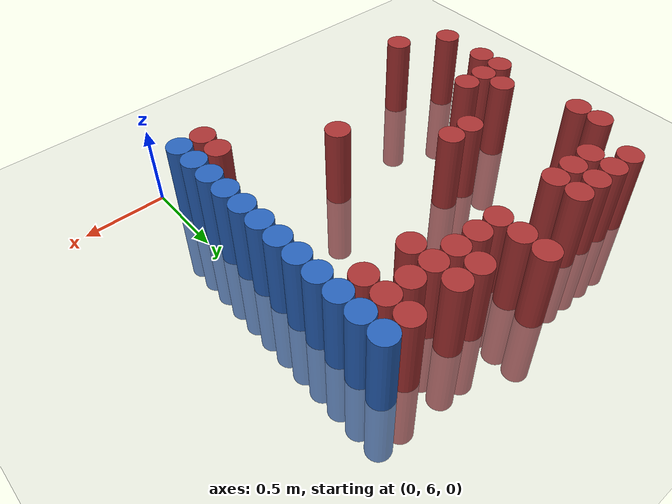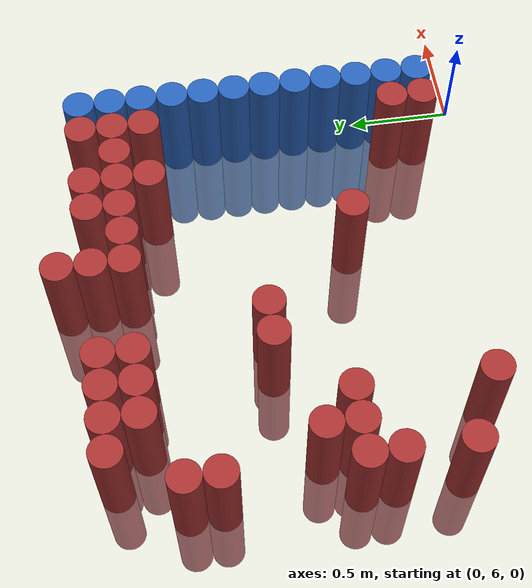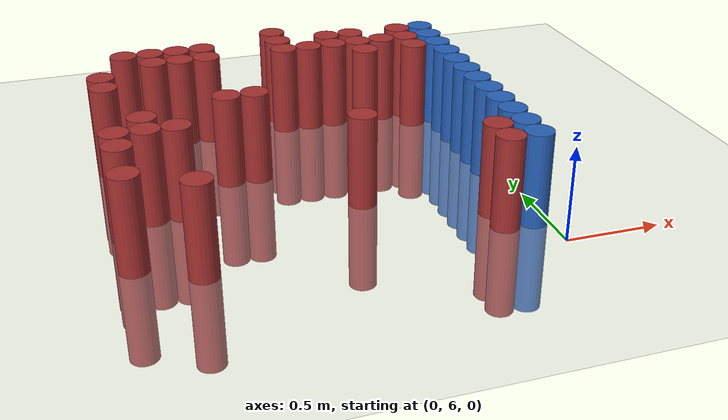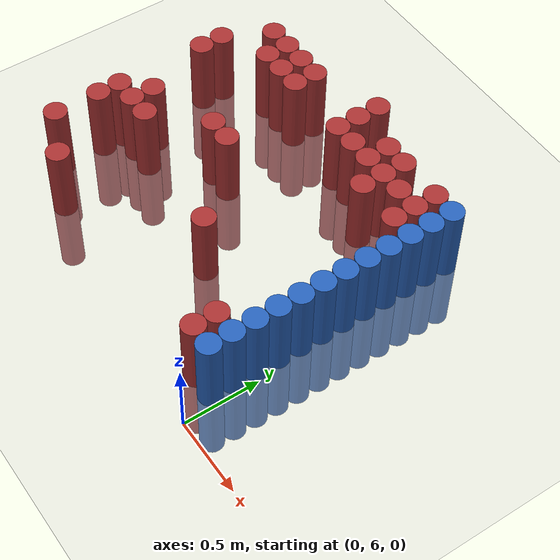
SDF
<sdf version="1.6">
 <world name="world_216">
  <model name="ground_plane">
   <static>1</static>
   <link name="link">
    <collision name="collision">
     <geometry><plane><normal>0 0 1</normal><size>100 100</size></plane></geometry>
     <surface><friction><ode><mu>100</mu><mu2>50</mu2></ode></friction></surface>
    </collision>
    <visual name="visual">
     <cast_shadows>0</cast_shadows>
     <geometry><plane><normal>0 0 1</normal><size>100 100</size></plane></geometry>
     <material>
      <script><uri>file://media/materials/scripts/gazebo.material</uri><name>Gazebo/Grey</name></script>
     </material>
    </visual>
   </link>
  </model>
  <model name="unit_cylinder_163">
   <static>1</static>
   <pose>-2.025000 6.375000 0.000000 0.000000 0.000000 0.000000</pose>
   <link name="link">
    <inertial>
     <mass>1</mass>
     <inertia><ixx>0.145833</ixx><ixy>0</ixy><ixz>0</ixz><iyy>0.145833</iyy><iyz>0</iyz><izz>0.125</izz></inertia>
    </inertial>
    <collision name="collision">
     <geometry><cylinder><radius>0.075000</radius><length>1</length></cylinder></geometry>
    </collision>
    <visual name="visual">
     <geometry><cylinder><radius>0.075000</radius><length>1</length></cylinder></geometry>
     <material>
      <ambient>0.648000 0.192000 0.192000 1</ambient>
      <diffuse>0.648000 0.192000 0.192000 1</diffuse>
     </material>
     <material>
      <script><name>Gazebo/Grey</name><uri>file://media/materials/scripts/gazebo.material</uri></script>
     </material>
    </visual>
   </link>
  </model>
  <model name="unit_cylinder_164">
   <static>1</static>
   <pose>-2.025000 6.675000 0.000000 0.000000 0.000000 0.000000</pose>
   <link name="link">
    <inertial>
     <mass>1</mass>
     <inertia><ixx>0.145833</ixx><ixy>0</ixy><ixz>0</ixz><iyy>0.145833</iyy><iyz>0</iyz><izz>0.125</izz></inertia>
    </inertial>
    <collision name="collision">
     <geometry><cylinder><radius>0.075000</radius><length>1</length></cylinder></geometry>
    </collision>
    <visual name="visual">
     <geometry><cylinder><radius>0.075000</radius><length>1</length></cylinder></geometry>
     <material>
      <ambient>0.648000 0.192000 0.192000 1</ambient>
      <diffuse>0.648000 0.192000 0.192000 1</diffuse>
     </material>
     <material>
      <script><name>Gazebo/Grey</name><uri>file://media/materials/scripts/gazebo.material</uri></script>
     </material>
    </visual>
   </link>
  </model>
  <model name="unit_cylinder_165">
   <static>1</static>
   <pose>-2.025000 6.825000 0.000000 0.000000 0.000000 0.000000</pose>
   <link name="link">
    <inertial>
     <mass>1</mass>
     <inertia><ixx>0.145833</ixx><ixy>0</ixy><ixz>0</ixz><iyy>0.145833</iyy><iyz>0</iyz><izz>0.125</izz></inertia>
    </inertial>
    <collision name="collision">
     <geometry><cylinder><radius>0.075000</radius><length>1</length></cylinder></geometry>
    </collision>
    <visual name="visual">
     <geometry><cylinder><radius>0.075000</radius><length>1</length></cylinder></geometry>
     <material>
      <ambient>0.648000 0.192000 0.192000 1</ambient>
      <diffuse>0.648000 0.192000 0.192000 1</diffuse>
     </material>
     <material>
      <script><name>Gazebo/Grey</name><uri>file://media/materials/scripts/gazebo.material</uri></script>
     </material>
    </visual>
   </link>
  </model>
  <model name="unit_cylinder_166">
   <static>1</static>
   <pose>-2.025000 7.425000 0.000000 0.000000 0.000000 0.000000</pose>
   <link name="link">
    <inertial>
     <mass>1</mass>
     <inertia><ixx>0.145833</ixx><ixy>0</ixy><ixz>0</ixz><iyy>0.145833</iyy><iyz>0</iyz><izz>0.125</izz></inertia>
    </inertial>
    <collision name="collision">
     <geometry><cylinder><radius>0.075000</radius><length>1</length></cylinder></geometry>
    </collision>
    <visual name="visual">
     <geometry><cylinder><radius>0.075000</radius><length>1</length></cylinder></geometry>
     <material>
      <ambient>0.648000 0.192000 0.192000 1</ambient>
      <diffuse>0.648000 0.192000 0.192000 1</diffuse>
     </material>
     <material>
      <script><name>Gazebo/Grey</name><uri>file://media/materials/scripts/gazebo.material</uri></script>
     </material>
    </visual>
   </link>
  </model>
  <model name="unit_cylinder_167">
   <static>1</static>
   <pose>-2.025000 7.575000 0.000000 0.000000 0.000000 0.000000</pose>
   <link name="link">
    <inertial>
     <mass>1</mass>
     <inertia><ixx>0.145833</ixx><ixy>0</ixy><ixz>0</ixz><iyy>0.145833</iyy><iyz>0</iyz><izz>0.125</izz></inertia>
    </inertial>
    <collision name="collision">
     <geometry><cylinder><radius>0.075000</radius><length>1</length></cylinder></geometry>
    </collision>
    <visual name="visual">
     <geometry><cylinder><radius>0.075000</radius><length>1</length></cylinder></geometry>
     <material>
      <ambient>0.648000 0.192000 0.192000 1</ambient>
      <diffuse>0.648000 0.192000 0.192000 1</diffuse>
     </material>
     <material>
      <script><name>Gazebo/Grey</name><uri>file://media/materials/scripts/gazebo.material</uri></script>
     </material>
    </visual>
   </link>
  </model>
  <model name="unit_cylinder_174">
   <static>1</static>
   <pose>-1.875000 6.825000 0.000000 0.000000 0.000000 0.000000</pose>
   <link name="link">
    <inertial>
     <mass>1</mass>
     <inertia><ixx>0.145833</ixx><ixy>0</ixy><ixz>0</ixz><iyy>0.145833</iyy><iyz>0</iyz><izz>0.125</izz></inertia>
    </inertial>
    <collision name="collision">
     <geometry><cylinder><radius>0.075000</radius><length>1</length></cylinder></geometry>
    </collision>
    <visual name="visual">
     <geometry><cylinder><radius>0.075000</radius><length>1</length></cylinder></geometry>
     <material>
      <ambient>0.648000 0.192000 0.192000 1</ambient>
      <diffuse>0.648000 0.192000 0.192000 1</diffuse>
     </material>
     <material>
      <script><name>Gazebo/Grey</name><uri>file://media/materials/scripts/gazebo.material</uri></script>
     </material>
    </visual>
   </link>
  </model>
  <model name="unit_cylinder_175">
   <static>1</static>
   <pose>-1.875000 6.975000 0.000000 0.000000 0.000000 0.000000</pose>
   <link name="link">
    <inertial>
     <mass>1</mass>
     <inertia><ixx>0.145833</ixx><ixy>0</ixy><ixz>0</ixz><iyy>0.145833</iyy><iyz>0</iyz><izz>0.125</izz></inertia>
    </inertial>
    <collision name="collision">
     <geometry><cylinder><radius>0.075000</radius><length>1</length></cylinder></geometry>
    </collision>
    <visual name="visual">
     <geometry><cylinder><radius>0.075000</radius><length>1</length></cylinder></geometry>
     <material>
      <ambient>0.648000 0.192000 0.192000 1</ambient>
      <diffuse>0.648000 0.192000 0.192000 1</diffuse>
     </material>
     <material>
      <script><name>Gazebo/Grey</name><uri>file://media/materials/scripts/gazebo.material</uri></script>
     </material>
    </visual>
   </link>
  </model>
  <model name="unit_cylinder_176">
   <static>1</static>
   <pose>-1.875000 7.875000 0.000000 0.000000 0.000000 0.000000</pose>
   <link name="link">
    <inertial>
     <mass>1</mass>
     <inertia><ixx>0.145833</ixx><ixy>0</ixy><ixz>0</ixz><iyy>0.145833</iyy><iyz>0</iyz><izz>0.125</izz></inertia>
    </inertial>
    <collision name="collision">
     <geometry><cylinder><radius>0.075000</radius><length>1</length></cylinder></geometry>
    </collision>
    <visual name="visual">
     <geometry><cylinder><radius>0.075000</radius><length>1</length></cylinder></geometry>
     <material>
      <ambient>0.648000 0.192000 0.192000 1</ambient>
      <diffuse>0.648000 0.192000 0.192000 1</diffuse>
     </material>
     <material>
      <script><name>Gazebo/Grey</name><uri>file://media/materials/scripts/gazebo.material</uri></script>
     </material>
    </visual>
   </link>
  </model>
  <model name="unit_cylinder_183">
   <static>1</static>
   <pose>-1.725000 6.225000 0.000000 0.000000 0.000000 0.000000</pose>
   <link name="link">
    <inertial>
     <mass>1</mass>
     <inertia><ixx>0.145833</ixx><ixy>0</ixy><ixz>0</ixz><iyy>0.145833</iyy><iyz>0</iyz><izz>0.125</izz></inertia>
    </inertial>
    <collision name="collision">
     <geometry><cylinder><radius>0.075000</radius><length>1</length></cylinder></geometry>
    </collision>
    <visual name="visual">
     <geometry><cylinder><radius>0.075000</radius><length>1</length></cylinder></geometry>
     <material>
      <ambient>0.648000 0.192000 0.192000 1</ambient>
      <diffuse>0.648000 0.192000 0.192000 1</diffuse>
     </material>
     <material>
      <script><name>Gazebo/Grey</name><uri>file://media/materials/scripts/gazebo.material</uri></script>
     </material>
    </visual>
   </link>
  </model>
  <model name="unit_cylinder_184">
   <static>1</static>
   <pose>-1.725000 6.825000 0.000000 0.000000 0.000000 0.000000</pose>
   <link name="link">
    <inertial>
     <mass>1</mass>
     <inertia><ixx>0.145833</ixx><ixy>0</ixy><ixz>0</ixz><iyy>0.145833</iyy><iyz>0</iyz><izz>0.125</izz></inertia>
    </inertial>
    <collision name="collision">
     <geometry><cylinder><radius>0.075000</radius><length>1</length></cylinder></geometry>
    </collision>
    <visual name="visual">
     <geometry><cylinder><radius>0.075000</radius><length>1</length></cylinder></geometry>
     <material>
      <ambient>0.648000 0.192000 0.192000 1</ambient>
      <diffuse>0.648000 0.192000 0.192000 1</diffuse>
     </material>
     <material>
      <script><name>Gazebo/Grey</name><uri>file://media/materials/scripts/gazebo.material</uri></script>
     </material>
    </visual>
   </link>
  </model>
  <model name="unit_cylinder_185">
   <static>1</static>
   <pose>-1.725000 7.725000 0.000000 0.000000 0.000000 0.000000</pose>
   <link name="link">
    <inertial>
     <mass>1</mass>
     <inertia><ixx>0.145833</ixx><ixy>0</ixy><ixz>0</ixz><iyy>0.145833</iyy><iyz>0</iyz><izz>0.125</izz></inertia>
    </inertial>
    <collision name="collision">
     <geometry><cylinder><radius>0.075000</radius><length>1</length></cylinder></geometry>
    </collision>
    <visual name="visual">
     <geometry><cylinder><radius>0.075000</radius><length>1</length></cylinder></geometry>
     <material>
      <ambient>0.648000 0.192000 0.192000 1</ambient>
      <diffuse>0.648000 0.192000 0.192000 1</diffuse>
     </material>
     <material>
      <script><name>Gazebo/Grey</name><uri>file://media/materials/scripts/gazebo.material</uri></script>
     </material>
    </visual>
   </link>
  </model>
  <model name="unit_cylinder_186">
   <static>1</static>
   <pose>-1.725000 7.875000 0.000000 0.000000 0.000000 0.000000</pose>
   <link name="link">
    <inertial>
     <mass>1</mass>
     <inertia><ixx>0.145833</ixx><ixy>0</ixy><ixz>0</ixz><iyy>0.145833</iyy><iyz>0</iyz><izz>0.125</izz></inertia>
    </inertial>
    <collision name="collision">
     <geometry><cylinder><radius>0.075000</radius><length>1</length></cylinder></geometry>
    </collision>
    <visual name="visual">
     <geometry><cylinder><radius>0.075000</radius><length>1</length></cylinder></geometry>
     <material>
      <ambient>0.648000 0.192000 0.192000 1</ambient>
      <diffuse>0.648000 0.192000 0.192000 1</diffuse>
     </material>
     <material>
      <script><name>Gazebo/Grey</name><uri>file://media/materials/scripts/gazebo.material</uri></script>
     </material>
    </visual>
   </link>
  </model>
  <model name="unit_cylinder_193">
   <static>1</static>
   <pose>-1.575000 7.725000 0.000000 0.000000 0.000000 0.000000</pose>
   <link name="link">
    <inertial>
     <mass>1</mass>
     <inertia><ixx>0.145833</ixx><ixy>0</ixy><ixz>0</ixz><iyy>0.145833</iyy><iyz>0</iyz><izz>0.125</izz></inertia>
    </inertial>
    <collision name="collision">
     <geometry><cylinder><radius>0.075000</radius><length>1</length></cylinder></geometry>
    </collision>
    <visual name="visual">
     <geometry><cylinder><radius>0.075000</radius><length>1</length></cylinder></geometry>
     <material>
      <ambient>0.648000 0.192000 0.192000 1</ambient>
      <diffuse>0.648000 0.192000 0.192000 1</diffuse>
     </material>
     <material>
      <script><name>Gazebo/Grey</name><uri>file://media/materials/scripts/gazebo.material</uri></script>
     </material>
    </visual>
   </link>
  </model>
  <model name="unit_cylinder_194">
   <static>1</static>
   <pose>-1.575000 7.875000 0.000000 0.000000 0.000000 0.000000</pose>
   <link name="link">
    <inertial>
     <mass>1</mass>
     <inertia><ixx>0.145833</ixx><ixy>0</ixy><ixz>0</ixz><iyy>0.145833</iyy><iyz>0</iyz><izz>0.125</izz></inertia>
    </inertial>
    <collision name="collision">
     <geometry><cylinder><radius>0.075000</radius><length>1</length></cylinder></geometry>
    </collision>
    <visual name="visual">
     <geometry><cylinder><radius>0.075000</radius><length>1</length></cylinder></geometry>
     <material>
      <ambient>0.648000 0.192000 0.192000 1</ambient>
      <diffuse>0.648000 0.192000 0.192000 1</diffuse>
     </material>
     <material>
      <script><name>Gazebo/Grey</name><uri>file://media/materials/scripts/gazebo.material</uri></script>
     </material>
    </visual>
   </link>
  </model>
  <model name="unit_cylinder_197">
   <static>1</static>
   <pose>-1.425000 7.125000 0.000000 0.000000 0.000000 0.000000</pose>
   <link name="link">
    <inertial>
     <mass>1</mass>
     <inertia><ixx>0.145833</ixx><ixy>0</ixy><ixz>0</ixz><iyy>0.145833</iyy><iyz>0</iyz><izz>0.125</izz></inertia>
    </inertial>
    <collision name="collision">
     <geometry><cylinder><radius>0.075000</radius><length>1</length></cylinder></geometry>
    </collision>
    <visual name="visual">
     <geometry><cylinder><radius>0.075000</radius><length>1</length></cylinder></geometry>
     <material>
      <ambient>0.648000 0.192000 0.192000 1</ambient>
      <diffuse>0.648000 0.192000 0.192000 1</diffuse>
     </material>
     <material>
      <script><name>Gazebo/Grey</name><uri>file://media/materials/scripts/gazebo.material</uri></script>
     </material>
    </visual>
   </link>
  </model>
  <model name="unit_cylinder_198">
   <static>1</static>
   <pose>-1.425000 7.725000 0.000000 0.000000 0.000000 0.000000</pose>
   <link name="link">
    <inertial>
     <mass>1</mass>
     <inertia><ixx>0.145833</ixx><ixy>0</ixy><ixz>0</ixz><iyy>0.145833</iyy><iyz>0</iyz><izz>0.125</izz></inertia>
    </inertial>
    <collision name="collision">
     <geometry><cylinder><radius>0.075000</radius><length>1</length></cylinder></geometry>
    </collision>
    <visual name="visual">
     <geometry><cylinder><radius>0.075000</radius><length>1</length></cylinder></geometry>
     <material>
      <ambient>0.648000 0.192000 0.192000 1</ambient>
      <diffuse>0.648000 0.192000 0.192000 1</diffuse>
     </material>
     <material>
      <script><name>Gazebo/Grey</name><uri>file://media/materials/scripts/gazebo.material</uri></script>
     </material>
    </visual>
   </link>
  </model>
  <model name="unit_cylinder_199">
   <static>1</static>
   <pose>-1.425000 7.875000 0.000000 0.000000 0.000000 0.000000</pose>
   <link name="link">
    <inertial>
     <mass>1</mass>
     <inertia><ixx>0.145833</ixx><ixy>0</ixy><ixz>0</ixz><iyy>0.145833</iyy><iyz>0</iyz><izz>0.125</izz></inertia>
    </inertial>
    <collision name="collision">
     <geometry><cylinder><radius>0.075000</radius><length>1</length></cylinder></geometry>
    </collision>
    <visual name="visual">
     <geometry><cylinder><radius>0.075000</radius><length>1</length></cylinder></geometry>
     <material>
      <ambient>0.648000 0.192000 0.192000 1</ambient>
      <diffuse>0.648000 0.192000 0.192000 1</diffuse>
     </material>
     <material>
      <script><name>Gazebo/Grey</name><uri>file://media/materials/scripts/gazebo.material</uri></script>
     </material>
    </visual>
   </link>
  </model>
  <model name="unit_cylinder_201">
   <static>1</static>
   <pose>-1.275000 7.125000 0.000000 0.000000 0.000000 0.000000</pose>
   <link name="link">
    <inertial>
     <mass>1</mass>
     <inertia><ixx>0.145833</ixx><ixy>0</ixy><ixz>0</ixz><iyy>0.145833</iyy><iyz>0</iyz><izz>0.125</izz></inertia>
    </inertial>
    <collision name="collision">
     <geometry><cylinder><radius>0.075000</radius><length>1</length></cylinder></geometry>
    </collision>
    <visual name="visual">
     <geometry><cylinder><radius>0.075000</radius><length>1</length></cylinder></geometry>
     <material>
      <ambient>0.648000 0.192000 0.192000 1</ambient>
      <diffuse>0.648000 0.192000 0.192000 1</diffuse>
     </material>
     <material>
      <script><name>Gazebo/Grey</name><uri>file://media/materials/scripts/gazebo.material</uri></script>
     </material>
    </visual>
   </link>
  </model>
  <model name="unit_cylinder_205">
   <static>1</static>
   <pose>-0.975000 7.725000 0.000000 0.000000 0.000000 0.000000</pose>
   <link name="link">
    <inertial>
     <mass>1</mass>
     <inertia><ixx>0.145833</ixx><ixy>0</ixy><ixz>0</ixz><iyy>0.145833</iyy><iyz>0</iyz><izz>0.125</izz></inertia>
    </inertial>
    <collision name="collision">
     <geometry><cylinder><radius>0.075000</radius><length>1</length></cylinder></geometry>
    </collision>
    <visual name="visual">
     <geometry><cylinder><radius>0.075000</radius><length>1</length></cylinder></geometry>
     <material>
      <ambient>0.648000 0.192000 0.192000 1</ambient>
      <diffuse>0.648000 0.192000 0.192000 1</diffuse>
     </material>
     <material>
      <script><name>Gazebo/Grey</name><uri>file://media/materials/scripts/gazebo.material</uri></script>
     </material>
    </visual>
   </link>
  </model>
  <model name="unit_cylinder_206">
   <static>1</static>
   <pose>-0.975000 7.875000 0.000000 0.000000 0.000000 0.000000</pose>
   <link name="link">
    <inertial>
     <mass>1</mass>
     <inertia><ixx>0.145833</ixx><ixy>0</ixy><ixz>0</ixz><iyy>0.145833</iyy><iyz>0</iyz><izz>0.125</izz></inertia>
    </inertial>
    <collision name="collision">
     <geometry><cylinder><radius>0.075000</radius><length>1</length></cylinder></geometry>
    </collision>
    <visual name="visual">
     <geometry><cylinder><radius>0.075000</radius><length>1</length></cylinder></geometry>
     <material>
      <ambient>0.648000 0.192000 0.192000 1</ambient>
      <diffuse>0.648000 0.192000 0.192000 1</diffuse>
     </material>
     <material>
      <script><name>Gazebo/Grey</name><uri>file://media/materials/scripts/gazebo.material</uri></script>
     </material>
    </visual>
   </link>
  </model>
  <model name="unit_cylinder_207">
   <static>1</static>
   <pose>-0.975000 8.025000 0.000000 0.000000 0.000000 0.000000</pose>
   <link name="link">
    <inertial>
     <mass>1</mass>
     <inertia><ixx>0.145833</ixx><ixy>0</ixy><ixz>0</ixz><iyy>0.145833</iyy><iyz>0</iyz><izz>0.125</izz></inertia>
    </inertial>
    <collision name="collision">
     <geometry><cylinder><radius>0.075000</radius><length>1</length></cylinder></geometry>
    </collision>
    <visual name="visual">
     <geometry><cylinder><radius>0.075000</radius><length>1</length></cylinder></geometry>
     <material>
      <ambient>0.648000 0.192000 0.192000 1</ambient>
      <diffuse>0.648000 0.192000 0.192000 1</diffuse>
     </material>
     <material>
      <script><name>Gazebo/Grey</name><uri>file://media/materials/scripts/gazebo.material</uri></script>
     </material>
    </visual>
   </link>
  </model>
  <model name="unit_cylinder_212">
   <static>1</static>
   <pose>-0.825000 6.675000 0.000000 0.000000 0.000000 0.000000</pose>
   <link name="link">
    <inertial>
     <mass>1</mass>
     <inertia><ixx>0.145833</ixx><ixy>0</ixy><ixz>0</ixz><iyy>0.145833</iyy><iyz>0</iyz><izz>0.125</izz></inertia>
    </inertial>
    <collision name="collision">
     <geometry><cylinder><radius>0.075000</radius><length>1</length></cylinder></geometry>
    </collision>
    <visual name="visual">
     <geometry><cylinder><radius>0.075000</radius><length>1</length></cylinder></geometry>
     <material>
      <ambient>0.648000 0.192000 0.192000 1</ambient>
      <diffuse>0.648000 0.192000 0.192000 1</diffuse>
     </material>
     <material>
      <script><name>Gazebo/Grey</name><uri>file://media/materials/scripts/gazebo.material</uri></script>
     </material>
    </visual>
   </link>
  </model>
  <model name="unit_cylinder_213">
   <static>1</static>
   <pose>-0.825000 7.725000 0.000000 0.000000 0.000000 0.000000</pose>
   <link name="link">
    <inertial>
     <mass>1</mass>
     <inertia><ixx>0.145833</ixx><ixy>0</ixy><ixz>0</ixz><iyy>0.145833</iyy><iyz>0</iyz><izz>0.125</izz></inertia>
    </inertial>
    <collision name="collision">
     <geometry><cylinder><radius>0.075000</radius><length>1</length></cylinder></geometry>
    </collision>
    <visual name="visual">
     <geometry><cylinder><radius>0.075000</radius><length>1</length></cylinder></geometry>
     <material>
      <ambient>0.648000 0.192000 0.192000 1</ambient>
      <diffuse>0.648000 0.192000 0.192000 1</diffuse>
     </material>
     <material>
      <script><name>Gazebo/Grey</name><uri>file://media/materials/scripts/gazebo.material</uri></script>
     </material>
    </visual>
   </link>
  </model>
  <model name="unit_cylinder_218">
   <static>1</static>
   <pose>-0.675000 7.725000 0.000000 0.000000 0.000000 0.000000</pose>
   <link name="link">
    <inertial>
     <mass>1</mass>
     <inertia><ixx>0.145833</ixx><ixy>0</ixy><ixz>0</ixz><iyy>0.145833</iyy><iyz>0</iyz><izz>0.125</izz></inertia>
    </inertial>
    <collision name="collision">
     <geometry><cylinder><radius>0.075000</radius><length>1</length></cylinder></geometry>
    </collision>
    <visual name="visual">
     <geometry><cylinder><radius>0.075000</radius><length>1</length></cylinder></geometry>
     <material>
      <ambient>0.648000 0.192000 0.192000 1</ambient>
      <diffuse>0.648000 0.192000 0.192000 1</diffuse>
     </material>
     <material>
      <script><name>Gazebo/Grey</name><uri>file://media/materials/scripts/gazebo.material</uri></script>
     </material>
    </visual>
   </link>
  </model>
  <model name="unit_cylinder_219">
   <static>1</static>
   <pose>-0.675000 7.875000 0.000000 0.000000 0.000000 0.000000</pose>
   <link name="link">
    <inertial>
     <mass>1</mass>
     <inertia><ixx>0.145833</ixx><ixy>0</ixy><ixz>0</ixz><iyy>0.145833</iyy><iyz>0</iyz><izz>0.125</izz></inertia>
    </inertial>
    <collision name="collision">
     <geometry><cylinder><radius>0.075000</radius><length>1</length></cylinder></geometry>
    </collision>
    <visual name="visual">
     <geometry><cylinder><radius>0.075000</radius><length>1</length></cylinder></geometry>
     <material>
      <ambient>0.648000 0.192000 0.192000 1</ambient>
      <diffuse>0.648000 0.192000 0.192000 1</diffuse>
     </material>
     <material>
      <script><name>Gazebo/Grey</name><uri>file://media/materials/scripts/gazebo.material</uri></script>
     </material>
    </visual>
   </link>
  </model>
  <model name="unit_cylinder_223">
   <static>1</static>
   <pose>-0.525000 7.575000 0.000000 0.000000 0.000000 0.000000</pose>
   <link name="link">
    <inertial>
     <mass>1</mass>
     <inertia><ixx>0.145833</ixx><ixy>0</ixy><ixz>0</ixz><iyy>0.145833</iyy><iyz>0</iyz><izz>0.125</izz></inertia>
    </inertial>
    <collision name="collision">
     <geometry><cylinder><radius>0.075000</radius><length>1</length></cylinder></geometry>
    </collision>
    <visual name="visual">
     <geometry><cylinder><radius>0.075000</radius><length>1</length></cylinder></geometry>
     <material>
      <ambient>0.648000 0.192000 0.192000 1</ambient>
      <diffuse>0.648000 0.192000 0.192000 1</diffuse>
     </material>
     <material>
      <script><name>Gazebo/Grey</name><uri>file://media/materials/scripts/gazebo.material</uri></script>
     </material>
    </visual>
   </link>
  </model>
  <model name="unit_cylinder_224">
   <static>1</static>
   <pose>-0.525000 7.725000 0.000000 0.000000 0.000000 0.000000</pose>
   <link name="link">
    <inertial>
     <mass>1</mass>
     <inertia><ixx>0.145833</ixx><ixy>0</ixy><ixz>0</ixz><iyy>0.145833</iyy><iyz>0</iyz><izz>0.125</izz></inertia>
    </inertial>
    <collision name="collision">
     <geometry><cylinder><radius>0.075000</radius><length>1</length></cylinder></geometry>
    </collision>
    <visual name="visual">
     <geometry><cylinder><radius>0.075000</radius><length>1</length></cylinder></geometry>
     <material>
      <ambient>0.648000 0.192000 0.192000 1</ambient>
      <diffuse>0.648000 0.192000 0.192000 1</diffuse>
     </material>
     <material>
      <script><name>Gazebo/Grey</name><uri>file://media/materials/scripts/gazebo.material</uri></script>
     </material>
    </visual>
   </link>
  </model>
  <model name="unit_cylinder_225">
   <static>1</static>
   <pose>-0.525000 7.875000 0.000000 0.000000 0.000000 0.000000</pose>
   <link name="link">
    <inertial>
     <mass>1</mass>
     <inertia><ixx>0.145833</ixx><ixy>0</ixy><ixz>0</ixz><iyy>0.145833</iyy><iyz>0</iyz><izz>0.125</izz></inertia>
    </inertial>
    <collision name="collision">
     <geometry><cylinder><radius>0.075000</radius><length>1</length></cylinder></geometry>
    </collision>
    <visual name="visual">
     <geometry><cylinder><radius>0.075000</radius><length>1</length></cylinder></geometry>
     <material>
      <ambient>0.648000 0.192000 0.192000 1</ambient>
      <diffuse>0.648000 0.192000 0.192000 1</diffuse>
     </material>
     <material>
      <script><name>Gazebo/Grey</name><uri>file://media/materials/scripts/gazebo.material</uri></script>
     </material>
    </visual>
   </link>
  </model>
  <model name="unit_cylinder_229">
   <static>1</static>
   <pose>-0.375000 7.725000 0.000000 0.000000 0.000000 0.000000</pose>
   <link name="link">
    <inertial>
     <mass>1</mass>
     <inertia><ixx>0.145833</ixx><ixy>0</ixy><ixz>0</ixz><iyy>0.145833</iyy><iyz>0</iyz><izz>0.125</izz></inertia>
    </inertial>
    <collision name="collision">
     <geometry><cylinder><radius>0.075000</radius><length>1</length></cylinder></geometry>
    </collision>
    <visual name="visual">
     <geometry><cylinder><radius>0.075000</radius><length>1</length></cylinder></geometry>
     <material>
      <ambient>0.648000 0.192000 0.192000 1</ambient>
      <diffuse>0.648000 0.192000 0.192000 1</diffuse>
     </material>
     <material>
      <script><name>Gazebo/Grey</name><uri>file://media/materials/scripts/gazebo.material</uri></script>
     </material>
    </visual>
   </link>
  </model>
  <model name="unit_cylinder_238">
   <static>1</static>
   <pose>-0.225000 6.225000 0.000000 0.000000 0.000000 0.000000</pose>
   <link name="link">
    <inertial>
     <mass>1</mass>
     <inertia><ixx>0.145833</ixx><ixy>0</ixy><ixz>0</ixz><iyy>0.145833</iyy><iyz>0</iyz><izz>0.125</izz></inertia>
    </inertial>
    <collision name="collision">
     <geometry><cylinder><radius>0.075000</radius><length>1</length></cylinder></geometry>
    </collision>
    <visual name="visual">
     <geometry><cylinder><radius>0.075000</radius><length>1</length></cylinder></geometry>
     <material>
      <ambient>0.648000 0.192000 0.192000 1</ambient>
      <diffuse>0.648000 0.192000 0.192000 1</diffuse>
     </material>
     <material>
      <script><name>Gazebo/Grey</name><uri>file://media/materials/scripts/gazebo.material</uri></script>
     </material>
    </visual>
   </link>
  </model>
  <model name="unit_cylinder_239">
   <static>1</static>
   <pose>-0.225000 6.375000 0.000000 0.000000 0.000000 0.000000</pose>
   <link name="link">
    <inertial>
     <mass>1</mass>
     <inertia><ixx>0.145833</ixx><ixy>0</ixy><ixz>0</ixz><iyy>0.145833</iyy><iyz>0</iyz><izz>0.125</izz></inertia>
    </inertial>
    <collision name="collision">
     <geometry><cylinder><radius>0.075000</radius><length>1</length></cylinder></geometry>
    </collision>
    <visual name="visual">
     <geometry><cylinder><radius>0.075000</radius><length>1</length></cylinder></geometry>
     <material>
      <ambient>0.648000 0.192000 0.192000 1</ambient>
      <diffuse>0.648000 0.192000 0.192000 1</diffuse>
     </material>
     <material>
      <script><name>Gazebo/Grey</name><uri>file://media/materials/scripts/gazebo.material</uri></script>
     </material>
    </visual>
   </link>
  </model>
  <model name="unit_cylinder_240">
   <static>1</static>
   <pose>-0.225000 7.575000 0.000000 0.000000 0.000000 0.000000</pose>
   <link name="link">
    <inertial>
     <mass>1</mass>
     <inertia><ixx>0.145833</ixx><ixy>0</ixy><ixz>0</ixz><iyy>0.145833</iyy><iyz>0</iyz><izz>0.125</izz></inertia>
    </inertial>
    <collision name="collision">
     <geometry><cylinder><radius>0.075000</radius><length>1</length></cylinder></geometry>
    </collision>
    <visual name="visual">
     <geometry><cylinder><radius>0.075000</radius><length>1</length></cylinder></geometry>
     <material>
      <ambient>0.648000 0.192000 0.192000 1</ambient>
      <diffuse>0.648000 0.192000 0.192000 1</diffuse>
     </material>
     <material>
      <script><name>Gazebo/Grey</name><uri>file://media/materials/scripts/gazebo.material</uri></script>
     </material>
    </visual>
   </link>
  </model>
  <model name="unit_cylinder_241">
   <static>1</static>
   <pose>-0.225000 7.725000 0.000000 0.000000 0.000000 0.000000</pose>
   <link name="link">
    <inertial>
     <mass>1</mass>
     <inertia><ixx>0.145833</ixx><ixy>0</ixy><ixz>0</ixz><iyy>0.145833</iyy><iyz>0</iyz><izz>0.125</izz></inertia>
    </inertial>
    <collision name="collision">
     <geometry><cylinder><radius>0.075000</radius><length>1</length></cylinder></geometry>
    </collision>
    <visual name="visual">
     <geometry><cylinder><radius>0.075000</radius><length>1</length></cylinder></geometry>
     <material>
      <ambient>0.648000 0.192000 0.192000 1</ambient>
      <diffuse>0.648000 0.192000 0.192000 1</diffuse>
     </material>
     <material>
      <script><name>Gazebo/Grey</name><uri>file://media/materials/scripts/gazebo.material</uri></script>
     </material>
    </visual>
   </link>
  </model>
  <model name="unit_cylinder_242">
   <static>1</static>
   <pose>-0.225000 7.875000 0.000000 0.000000 0.000000 0.000000</pose>
   <link name="link">
    <inertial>
     <mass>1</mass>
     <inertia><ixx>0.145833</ixx><ixy>0</ixy><ixz>0</ixz><iyy>0.145833</iyy><iyz>0</iyz><izz>0.125</izz></inertia>
    </inertial>
    <collision name="collision">
     <geometry><cylinder><radius>0.075000</radius><length>1</length></cylinder></geometry>
    </collision>
    <visual name="visual">
     <geometry><cylinder><radius>0.075000</radius><length>1</length></cylinder></geometry>
     <material>
      <ambient>0.648000 0.192000 0.192000 1</ambient>
      <diffuse>0.648000 0.192000 0.192000 1</diffuse>
     </material>
     <material>
      <script><name>Gazebo/Grey</name><uri>file://media/materials/scripts/gazebo.material</uri></script>
     </material>
    </visual>
   </link>
  </model>
  <model name="unit_cylinder_257">
   <static>1</static>
   <pose>-0.075000 6.225000 0.000000 0.000000 0.000000 0.000000</pose>
   <link name="link">
    <inertial>
     <mass>1</mass>
     <inertia><ixx>0.145833</ixx><ixy>0</ixy><ixz>0</ixz><iyy>0.145833</iyy><iyz>0</iyz><izz>0.125</izz></inertia>
    </inertial>
    <collision name="collision">
     <geometry><cylinder><radius>0.075000</radius><length>1</length></cylinder></geometry>
    </collision>
    <visual name="visual">
     <geometry><cylinder><radius>0.075000</radius><length>1</length></cylinder></geometry>
     <material>
      <ambient>0.152000 0.379000 0.720000 1</ambient>
      <diffuse>0.152000 0.379000 0.720000 1</diffuse>
     </material>
     <material>
      <script><name>Gazebo/Grey</name><uri>file://media/materials/scripts/gazebo.material</uri></script>
     </material>
    </visual>
   </link>
  </model>
  <model name="unit_cylinder_258">
   <static>1</static>
   <pose>-0.075000 6.375000 0.000000 0.000000 0.000000 0.000000</pose>
   <link name="link">
    <inertial>
     <mass>1</mass>
     <inertia><ixx>0.145833</ixx><ixy>0</ixy><ixz>0</ixz><iyy>0.145833</iyy><iyz>0</iyz><izz>0.125</izz></inertia>
    </inertial>
    <collision name="collision">
     <geometry><cylinder><radius>0.075000</radius><length>1</length></cylinder></geometry>
    </collision>
    <visual name="visual">
     <geometry><cylinder><radius>0.075000</radius><length>1</length></cylinder></geometry>
     <material>
      <ambient>0.152000 0.379000 0.720000 1</ambient>
      <diffuse>0.152000 0.379000 0.720000 1</diffuse>
     </material>
     <material>
      <script><name>Gazebo/Grey</name><uri>file://media/materials/scripts/gazebo.material</uri></script>
     </material>
    </visual>
   </link>
  </model>
  <model name="unit_cylinder_259">
   <static>1</static>
   <pose>-0.075000 6.525000 0.000000 0.000000 0.000000 0.000000</pose>
   <link name="link">
    <inertial>
     <mass>1</mass>
     <inertia><ixx>0.145833</ixx><ixy>0</ixy><ixz>0</ixz><iyy>0.145833</iyy><iyz>0</iyz><izz>0.125</izz></inertia>
    </inertial>
    <collision name="collision">
     <geometry><cylinder><radius>0.075000</radius><length>1</length></cylinder></geometry>
    </collision>
    <visual name="visual">
     <geometry><cylinder><radius>0.075000</radius><length>1</length></cylinder></geometry>
     <material>
      <ambient>0.152000 0.379000 0.720000 1</ambient>
      <diffuse>0.152000 0.379000 0.720000 1</diffuse>
     </material>
     <material>
      <script><name>Gazebo/Grey</name><uri>file://media/materials/scripts/gazebo.material</uri></script>
     </material>
    </visual>
   </link>
  </model>
  <model name="unit_cylinder_260">
   <static>1</static>
   <pose>-0.075000 6.675000 0.000000 0.000000 0.000000 0.000000</pose>
   <link name="link">
    <inertial>
     <mass>1</mass>
     <inertia><ixx>0.145833</ixx><ixy>0</ixy><ixz>0</ixz><iyy>0.145833</iyy><iyz>0</iyz><izz>0.125</izz></inertia>
    </inertial>
    <collision name="collision">
     <geometry><cylinder><radius>0.075000</radius><length>1</length></cylinder></geometry>
    </collision>
    <visual name="visual">
     <geometry><cylinder><radius>0.075000</radius><length>1</length></cylinder></geometry>
     <material>
      <ambient>0.152000 0.379000 0.720000 1</ambient>
      <diffuse>0.152000 0.379000 0.720000 1</diffuse>
     </material>
     <material>
      <script><name>Gazebo/Grey</name><uri>file://media/materials/scripts/gazebo.material</uri></script>
     </material>
    </visual>
   </link>
  </model>
  <model name="unit_cylinder_261">
   <static>1</static>
   <pose>-0.075000 6.825000 0.000000 0.000000 0.000000 0.000000</pose>
   <link name="link">
    <inertial>
     <mass>1</mass>
     <inertia><ixx>0.145833</ixx><ixy>0</ixy><ixz>0</ixz><iyy>0.145833</iyy><iyz>0</iyz><izz>0.125</izz></inertia>
    </inertial>
    <collision name="collision">
     <geometry><cylinder><radius>0.075000</radius><length>1</length></cylinder></geometry>
    </collision>
    <visual name="visual">
     <geometry><cylinder><radius>0.075000</radius><length>1</length></cylinder></geometry>
     <material>
      <ambient>0.152000 0.379000 0.720000 1</ambient>
      <diffuse>0.152000 0.379000 0.720000 1</diffuse>
     </material>
     <material>
      <script><name>Gazebo/Grey</name><uri>file://media/materials/scripts/gazebo.material</uri></script>
     </material>
    </visual>
   </link>
  </model>
  <model name="unit_cylinder_262">
   <static>1</static>
   <pose>-0.075000 6.975000 0.000000 0.000000 0.000000 0.000000</pose>
   <link name="link">
    <inertial>
     <mass>1</mass>
     <inertia><ixx>0.145833</ixx><ixy>0</ixy><ixz>0</ixz><iyy>0.145833</iyy><iyz>0</iyz><izz>0.125</izz></inertia>
    </inertial>
    <collision name="collision">
     <geometry><cylinder><radius>0.075000</radius><length>1</length></cylinder></geometry>
    </collision>
    <visual name="visual">
     <geometry><cylinder><radius>0.075000</radius><length>1</length></cylinder></geometry>
     <material>
      <ambient>0.152000 0.379000 0.720000 1</ambient>
      <diffuse>0.152000 0.379000 0.720000 1</diffuse>
     </material>
     <material>
      <script><name>Gazebo/Grey</name><uri>file://media/materials/scripts/gazebo.material</uri></script>
     </material>
    </visual>
   </link>
  </model>
  <model name="unit_cylinder_263">
   <static>1</static>
   <pose>-0.075000 7.125000 0.000000 0.000000 0.000000 0.000000</pose>
   <link name="link">
    <inertial>
     <mass>1</mass>
     <inertia><ixx>0.145833</ixx><ixy>0</ixy><ixz>0</ixz><iyy>0.145833</iyy><iyz>0</iyz><izz>0.125</izz></inertia>
    </inertial>
    <collision name="collision">
     <geometry><cylinder><radius>0.075000</radius><length>1</length></cylinder></geometry>
    </collision>
    <visual name="visual">
     <geometry><cylinder><radius>0.075000</radius><length>1</length></cylinder></geometry>
     <material>
      <ambient>0.152000 0.379000 0.720000 1</ambient>
      <diffuse>0.152000 0.379000 0.720000 1</diffuse>
     </material>
     <material>
      <script><name>Gazebo/Grey</name><uri>file://media/materials/scripts/gazebo.material</uri></script>
     </material>
    </visual>
   </link>
  </model>
  <model name="unit_cylinder_264">
   <static>1</static>
   <pose>-0.075000 7.275000 0.000000 0.000000 0.000000 0.000000</pose>
   <link name="link">
    <inertial>
     <mass>1</mass>
     <inertia><ixx>0.145833</ixx><ixy>0</ixy><ixz>0</ixz><iyy>0.145833</iyy><iyz>0</iyz><izz>0.125</izz></inertia>
    </inertial>
    <collision name="collision">
     <geometry><cylinder><radius>0.075000</radius><length>1</length></cylinder></geometry>
    </collision>
    <visual name="visual">
     <geometry><cylinder><radius>0.075000</radius><length>1</length></cylinder></geometry>
     <material>
      <ambient>0.152000 0.379000 0.720000 1</ambient>
      <diffuse>0.152000 0.379000 0.720000 1</diffuse>
     </material>
     <material>
      <script><name>Gazebo/Grey</name><uri>file://media/materials/scripts/gazebo.material</uri></script>
     </material>
    </visual>
   </link>
  </model>
  <model name="unit_cylinder_265">
   <static>1</static>
   <pose>-0.075000 7.425000 0.000000 0.000000 0.000000 0.000000</pose>
   <link name="link">
    <inertial>
     <mass>1</mass>
     <inertia><ixx>0.145833</ixx><ixy>0</ixy><ixz>0</ixz><iyy>0.145833</iyy><iyz>0</iyz><izz>0.125</izz></inertia>
    </inertial>
    <collision name="collision">
     <geometry><cylinder><radius>0.075000</radius><length>1</length></cylinder></geometry>
    </collision>
    <visual name="visual">
     <geometry><cylinder><radius>0.075000</radius><length>1</length></cylinder></geometry>
     <material>
      <ambient>0.152000 0.379000 0.720000 1</ambient>
      <diffuse>0.152000 0.379000 0.720000 1</diffuse>
     </material>
     <material>
      <script><name>Gazebo/Grey</name><uri>file://media/materials/scripts/gazebo.material</uri></script>
     </material>
    </visual>
   </link>
  </model>
  <model name="unit_cylinder_266">
   <static>1</static>
   <pose>-0.075000 7.575000 0.000000 0.000000 0.000000 0.000000</pose>
   <link name="link">
    <inertial>
     <mass>1</mass>
     <inertia><ixx>0.145833</ixx><ixy>0</ixy><ixz>0</ixz><iyy>0.145833</iyy><iyz>0</iyz><izz>0.125</izz></inertia>
    </inertial>
    <collision name="collision">
     <geometry><cylinder><radius>0.075000</radius><length>1</length></cylinder></geometry>
    </collision>
    <visual name="visual">
     <geometry><cylinder><radius>0.075000</radius><length>1</length></cylinder></geometry>
     <material>
      <ambient>0.152000 0.379000 0.720000 1</ambient>
      <diffuse>0.152000 0.379000 0.720000 1</diffuse>
     </material>
     <material>
      <script><name>Gazebo/Grey</name><uri>file://media/materials/scripts/gazebo.material</uri></script>
     </material>
    </visual>
   </link>
  </model>
  <model name="unit_cylinder_267">
   <static>1</static>
   <pose>-0.075000 7.725000 0.000000 0.000000 0.000000 0.000000</pose>
   <link name="link">
    <inertial>
     <mass>1</mass>
     <inertia><ixx>0.145833</ixx><ixy>0</ixy><ixz>0</ixz><iyy>0.145833</iyy><iyz>0</iyz><izz>0.125</izz></inertia>
    </inertial>
    <collision name="collision">
     <geometry><cylinder><radius>0.075000</radius><length>1</length></cylinder></geometry>
    </collision>
    <visual name="visual">
     <geometry><cylinder><radius>0.075000</radius><length>1</length></cylinder></geometry>
     <material>
      <ambient>0.152000 0.379000 0.720000 1</ambient>
      <diffuse>0.152000 0.379000 0.720000 1</diffuse>
     </material>
     <material>
      <script><name>Gazebo/Grey</name><uri>file://media/materials/scripts/gazebo.material</uri></script>
     </material>
    </visual>
   </link>
  </model>
  <model name="unit_cylinder_268">
   <static>1</static>
   <pose>-0.075000 7.875000 0.000000 0.000000 0.000000 0.000000</pose>
   <link name="link">
    <inertial>
     <mass>1</mass>
     <inertia><ixx>0.145833</ixx><ixy>0</ixy><ixz>0</ixz><iyy>0.145833</iyy><iyz>0</iyz><izz>0.125</izz></inertia>
    </inertial>
    <collision name="collision">
     <geometry><cylinder><radius>0.075000</radius><length>1</length></cylinder></geometry>
    </collision>
    <visual name="visual">
     <geometry><cylinder><radius>0.075000</radius><length>1</length></cylinder></geometry>
     <material>
      <ambient>0.152000 0.379000 0.720000 1</ambient>
      <diffuse>0.152000 0.379000 0.720000 1</diffuse>
     </material>
     <material>
      <script><name>Gazebo/Grey</name><uri>file://media/materials/scripts/gazebo.material</uri></script>
     </material>
    </visual>
   </link>
  </model>
 </world>
</sdf>
